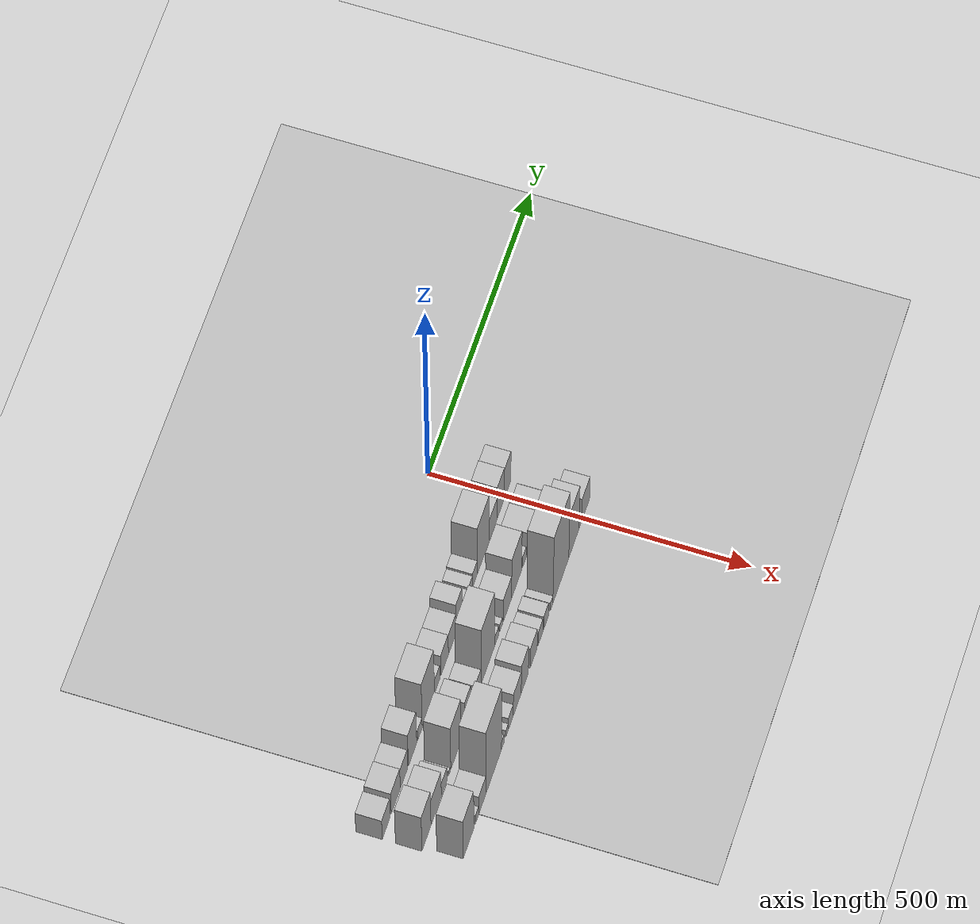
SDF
<sdf version="1.6">
 <world name="default">
  <include><name>ground_plane_1</name><uri>model://HANNAS_ground_plane</uri></include>
  <include>
   <name>ground_plane_2</name>
   <uri>model://HANNAS_ground_plane</uri>
   <pose>100 0 0  0 0 0</pose>
  </include>
  <model name="building_1">
   <static>1</static>
   <pose>100.0000 -561.8309 0 0.000000 0.000000 0.000000</pose>
   <link name="link">
    <pose>0 0 33.00 0 0 0</pose>
    <collision name="collision"><geometry><box><size>40.0000 36.3382 66.0000</size></box></geometry></collision>
    <visual name="visual">
     <cast_shadows>0</cast_shadows>
     <geometry><box><size>40.0000 36.3382 66.0000</size></box></geometry>
     <material>
      <script>
       <uri>model://HANNAS_wall/materials/scripts</uri>
       <uri>model://HANNAS_wall/materials/textures</uri>
       <name>vrc/HANNAS_wall</name>
      </script>
     </material>
    </visual>
   </link>
  </model>
  <model name="building_2">
   <static>1</static>
   <pose>100.0000 -517.9481 0 0.000000 0.000000 0.000000</pose>
   <link name="link">
    <pose>0 0 36.00 0 0 0</pose>
    <collision name="collision"><geometry><box><size>40.0000 41.4275 72.0000</size></box></geometry></collision>
    <visual name="visual">
     <cast_shadows>0</cast_shadows>
     <geometry><box><size>40.0000 41.4275 72.0000</size></box></geometry>
     <material>
      <script>
       <uri>model://HANNAS_wall/materials/scripts</uri>
       <uri>model://HANNAS_wall/materials/textures</uri>
       <name>vrc/HANNAS_wall</name>
      </script>
     </material>
    </visual>
   </link>
  </model>
  <model name="building_3">
   <static>1</static>
   <pose>100.0000 -480.1152 0 0.000000 0.000000 0.000000</pose>
   <link name="link">
    <pose>0 0 33.00 0 0 0</pose>
    <collision name="collision"><geometry><box><size>40.0000 34.2383 66.0000</size></box></geometry></collision>
    <visual name="visual">
     <cast_shadows>0</cast_shadows>
     <geometry><box><size>40.0000 34.2383 66.0000</size></box></geometry>
     <material>
      <script>
       <uri>model://HANNAS_wall/materials/scripts</uri>
       <uri>model://HANNAS_wall/materials/textures</uri>
       <name>vrc/HANNAS_wall</name>
      </script>
     </material>
    </visual>
   </link>
  </model>
  <model name="building_4">
   <static>1</static>
   <pose>100.0000 -440.6088 0 0.000000 0.000000 0.000000</pose>
   <link name="link">
    <pose>0 0 54.00 0 0 0</pose>
    <collision name="collision"><geometry><box><size>40.0000 38.7744 108.0000</size></box></geometry></collision>
    <visual name="visual">
     <cast_shadows>0</cast_shadows>
     <geometry><box><size>40.0000 38.7744 108.0000</size></box></geometry>
     <material>
      <script>
       <uri>model://HANNAS_wall/materials/scripts</uri>
       <uri>model://HANNAS_wall/materials/textures</uri>
       <name>vrc/HANNAS_wall</name>
      </script>
     </material>
    </visual>
   </link>
  </model>
  <model name="building_5">
   <static>1</static>
   <pose>100.0000 -406.5077 0 0.000000 0.000000 0.000000</pose>
   <link name="link">
    <pose>0 0 18.00 0 0 0</pose>
    <collision name="collision"><geometry><box><size>40.0000 21.4278 36.0000</size></box></geometry></collision>
    <visual name="visual">
     <cast_shadows>0</cast_shadows>
     <geometry><box><size>40.0000 21.4278 36.0000</size></box></geometry>
     <material>
      <script>
       <uri>model://HANNAS_wall/materials/scripts</uri>
       <uri>model://HANNAS_wall/materials/textures</uri>
       <name>vrc/HANNAS_wall</name>
      </script>
     </material>
    </visual>
   </link>
  </model>
  <model name="building_6">
   <static>1</static>
   <pose>100.0000 -367.1840 0 0.000000 0.000000 0.000000</pose>
   <link name="link">
    <pose>0 0 75.00 0 0 0</pose>
    <collision name="collision"><geometry><box><size>40.0000 57.2195 150.0000</size></box></geometry></collision>
    <visual name="visual">
     <cast_shadows>0</cast_shadows>
     <geometry><box><size>40.0000 57.2195 150.0000</size></box></geometry>
     <material>
      <script>
       <uri>model://HANNAS_wall/materials/scripts</uri>
       <uri>model://HANNAS_wall/materials/textures</uri>
       <name>vrc/HANNAS_wall</name>
      </script>
     </material>
    </visual>
   </link>
  </model>
  <model name="building_7">
   <static>1</static>
   <pose>100.0000 -325.8104 0 0.000000 0.000000 0.000000</pose>
   <link name="link">
    <pose>0 0 22.50 0 0 0</pose>
    <collision name="collision"><geometry><box><size>40.0000 25.5277 45.0000</size></box></geometry></collision>
    <visual name="visual">
     <cast_shadows>0</cast_shadows>
     <geometry><box><size>40.0000 25.5277 45.0000</size></box></geometry>
     <material>
      <script>
       <uri>model://HANNAS_wall/materials/scripts</uri>
       <uri>model://HANNAS_wall/materials/textures</uri>
       <name>vrc/HANNAS_wall</name>
      </script>
     </material>
    </visual>
   </link>
  </model>
  <model name="building_8">
   <static>1</static>
   <pose>100.0000 -291.0160 0 0.000000 0.000000 0.000000</pose>
   <link name="link">
    <pose>0 0 34.50 0 0 0</pose>
    <collision name="collision"><geometry><box><size>40.0000 36.0610 69.0000</size></box></geometry></collision>
    <visual name="visual">
     <cast_shadows>0</cast_shadows>
     <geometry><box><size>40.0000 36.0610 69.0000</size></box></geometry>
     <material>
      <script>
       <uri>model://HANNAS_wall/materials/scripts</uri>
       <uri>model://HANNAS_wall/materials/textures</uri>
       <name>vrc/HANNAS_wall</name>
      </script>
     </material>
    </visual>
   </link>
  </model>
  <model name="building_9">
   <static>1</static>
   <pose>100.0000 -254.7991 0 0.000000 0.000000 0.000000</pose>
   <link name="link">
    <pose>0 0 33.00 0 0 0</pose>
    <collision name="collision"><geometry><box><size>40.0000 36.3728 66.0000</size></box></geometry></collision>
    <visual name="visual">
     <cast_shadows>0</cast_shadows>
     <geometry><box><size>40.0000 36.3728 66.0000</size></box></geometry>
     <material>
      <script>
       <uri>model://HANNAS_wall/materials/scripts</uri>
       <uri>model://HANNAS_wall/materials/textures</uri>
       <name>vrc/HANNAS_wall</name>
      </script>
     </material>
    </visual>
   </link>
  </model>
  <model name="building_10">
   <static>1</static>
   <pose>100.0000 -222.1280 0 0.000000 0.000000 0.000000</pose>
   <link name="link">
    <pose>0 0 48.00 0 0 0</pose>
    <collision name="collision"><geometry><box><size>40.0000 28.9694 96.0000</size></box></geometry></collision>
    <visual name="visual">
     <cast_shadows>0</cast_shadows>
     <geometry><box><size>40.0000 28.9694 96.0000</size></box></geometry>
     <material>
      <script>
       <uri>model://HANNAS_wall/materials/scripts</uri>
       <uri>model://HANNAS_wall/materials/textures</uri>
       <name>vrc/HANNAS_wall</name>
      </script>
     </material>
    </visual>
   </link>
  </model>
  <model name="building_11">
   <static>1</static>
   <pose>100.0000 -188.0623 0 0.000000 0.000000 0.000000</pose>
   <link name="link">
    <pose>0 0 16.50 0 0 0</pose>
    <collision name="collision"><geometry><box><size>40.0000 19.1621 33.0000</size></box></geometry></collision>
    <visual name="visual">
     <cast_shadows>0</cast_shadows>
     <geometry><box><size>40.0000 19.1621 33.0000</size></box></geometry>
     <material>
      <script>
       <uri>model://HANNAS_wall/materials/scripts</uri>
       <uri>model://HANNAS_wall/materials/textures</uri>
       <name>vrc/HANNAS_wall</name>
      </script>
     </material>
    </visual>
   </link>
  </model>
  <model name="building_12">
   <static>1</static>
   <pose>100.0000 -168.3944 0 0.000000 0.000000 0.000000</pose>
   <link name="link">
    <pose>0 0 19.50 0 0 0</pose>
    <collision name="collision"><geometry><box><size>40.0000 20.1737 39.0000</size></box></geometry></collision>
    <visual name="visual">
     <cast_shadows>0</cast_shadows>
     <geometry><box><size>40.0000 20.1737 39.0000</size></box></geometry>
     <material>
      <script>
       <uri>model://HANNAS_wall/materials/scripts</uri>
       <uri>model://HANNAS_wall/materials/textures</uri>
       <name>vrc/HANNAS_wall</name>
      </script>
     </material>
    </visual>
   </link>
  </model>
  <model name="building_13">
   <static>1</static>
   <pose>100.0000 -146.7684 0 0.000000 0.000000 0.000000</pose>
   <link name="link">
    <pose>0 0 22.50 0 0 0</pose>
    <collision name="collision"><geometry><box><size>40.0000 23.0784 45.0000</size></box></geometry></collision>
    <visual name="visual">
     <cast_shadows>0</cast_shadows>
     <geometry><box><size>40.0000 23.0784 45.0000</size></box></geometry>
     <material>
      <script>
       <uri>model://HANNAS_wall/materials/scripts</uri>
       <uri>model://HANNAS_wall/materials/textures</uri>
       <name>vrc/HANNAS_wall</name>
      </script>
     </material>
    </visual>
   </link>
  </model>
  <model name="building_14">
   <static>1</static>
   <pose>100.0000 -107.0649 0 0.000000 0.000000 0.000000</pose>
   <link name="link">
    <pose>0 0 75.00 0 0 0</pose>
    <collision name="collision"><geometry><box><size>40.0000 56.3285 150.0000</size></box></geometry></collision>
    <visual name="visual">
     <cast_shadows>0</cast_shadows>
     <geometry><box><size>40.0000 56.3285 150.0000</size></box></geometry>
     <material>
      <script>
       <uri>model://HANNAS_wall/materials/scripts</uri>
       <uri>model://HANNAS_wall/materials/textures</uri>
       <name>vrc/HANNAS_wall</name>
      </script>
     </material>
    </visual>
   </link>
  </model>
  <model name="building_15">
   <static>1</static>
   <pose>100.0000 -59.4415 0 0.000000 0.000000 0.000000</pose>
   <link name="link">
    <pose>0 0 34.50 0 0 0</pose>
    <collision name="collision"><geometry><box><size>40.0000 38.9183 69.0000</size></box></geometry></collision>
    <visual name="visual">
     <cast_shadows>0</cast_shadows>
     <geometry><box><size>40.0000 38.9183 69.0000</size></box></geometry>
     <material>
      <script>
       <uri>model://HANNAS_wall/materials/scripts</uri>
       <uri>model://HANNAS_wall/materials/textures</uri>
       <name>vrc/HANNAS_wall</name>
      </script>
     </material>
    </visual>
   </link>
  </model>
  <model name="building_16">
   <static>1</static>
   <pose>100.0000 -22.7742 0 0.000000 0.000000 0.000000</pose>
   <link name="link">
    <pose>0 0 51.00 0 0 0</pose>
    <collision name="collision"><geometry><box><size>40.0000 34.4164 102.0000</size></box></geometry></collision>
    <visual name="visual">
     <cast_shadows>0</cast_shadows>
     <geometry><box><size>40.0000 34.4164 102.0000</size></box></geometry>
     <material>
      <script>
       <uri>model://HANNAS_wall/materials/scripts</uri>
       <uri>model://HANNAS_wall/materials/textures</uri>
       <name>vrc/HANNAS_wall</name>
      </script>
     </material>
    </visual>
   </link>
  </model>
  <model name="building_17">
   <static>1</static>
   <pose>100.0000 10.1270 0 0.000000 0.000000 0.000000</pose>
   <link name="link">
    <pose>0 0 48.00 0 0 0</pose>
    <collision name="collision"><geometry><box><size>40.0000 31.3859 96.0000</size></box></geometry></collision>
    <visual name="visual">
     <cast_shadows>0</cast_shadows>
     <geometry><box><size>40.0000 31.3859 96.0000</size></box></geometry>
     <material>
      <script>
       <uri>model://HANNAS_wall/materials/scripts</uri>
       <uri>model://HANNAS_wall/materials/textures</uri>
       <name>vrc/HANNAS_wall</name>
      </script>
     </material>
    </visual>
   </link>
  </model>
  <model name="building_38">
   <static>1</static>
   <pose>160.0000 -559.2099 0 0.000000 0.000000 0.000000</pose>
   <link name="link">
    <pose>0 0 60.00 0 0 0</pose>
    <collision name="collision"><geometry><box><size>40.0000 41.5803 120.0000</size></box></geometry></collision>
    <visual name="visual">
     <cast_shadows>0</cast_shadows>
     <geometry><box><size>40.0000 41.5803 120.0000</size></box></geometry>
     <material>
      <script>
       <uri>model://HANNAS_wall/materials/scripts</uri>
       <uri>model://HANNAS_wall/materials/textures</uri>
       <name>vrc/HANNAS_wall</name>
      </script>
     </material>
    </visual>
   </link>
  </model>
  <model name="building_39">
   <static>1</static>
   <pose>160.0000 -514.3681 0 0.000000 0.000000 0.000000</pose>
   <link name="link">
    <pose>0 0 43.50 0 0 0</pose>
    <collision name="collision"><geometry><box><size>40.0000 48.1032 87.0000</size></box></geometry></collision>
    <visual name="visual">
     <cast_shadows>0</cast_shadows>
     <geometry><box><size>40.0000 48.1032 87.0000</size></box></geometry>
     <material>
      <script>
       <uri>model://HANNAS_wall/materials/scripts</uri>
       <uri>model://HANNAS_wall/materials/textures</uri>
       <name>vrc/HANNAS_wall</name>
      </script>
     </material>
    </visual>
   </link>
  </model>
  <model name="building_40">
   <static>1</static>
   <pose>160.0000 -477.2326 0 0.000000 0.000000 0.000000</pose>
   <link name="link">
    <pose>0 0 22.50 0 0 0</pose>
    <collision name="collision"><geometry><box><size>40.0000 26.1678 45.0000</size></box></geometry></collision>
    <visual name="visual">
     <cast_shadows>0</cast_shadows>
     <geometry><box><size>40.0000 26.1678 45.0000</size></box></geometry>
     <material>
      <script>
       <uri>model://HANNAS_wall/materials/scripts</uri>
       <uri>model://HANNAS_wall/materials/textures</uri>
       <name>vrc/HANNAS_wall</name>
      </script>
     </material>
    </visual>
   </link>
  </model>
  <model name="building_41">
   <static>1</static>
   <pose>160.0000 -452.6797 0 0.000000 0.000000 0.000000</pose>
   <link name="link">
    <pose>0 0 7.50 0 0 0</pose>
    <collision name="collision"><geometry><box><size>40.0000 6.9381 15.0000</size></box></geometry></collision>
    <visual name="visual">
     <cast_shadows>0</cast_shadows>
     <geometry><box><size>40.0000 6.9381 15.0000</size></box></geometry>
     <material>
      <script>
       <uri>model://HANNAS_wall/materials/scripts</uri>
       <uri>model://HANNAS_wall/materials/textures</uri>
       <name>vrc/HANNAS_wall</name>
      </script>
     </material>
    </visual>
   </link>
  </model>
  <model name="building_42">
   <static>1</static>
   <pose>160.0000 -422.0795 0 0.000000 0.000000 0.000000</pose>
   <link name="link">
    <pose>0 0 72.00 0 0 0</pose>
    <collision name="collision"><geometry><box><size>40.0000 48.2623 144.0000</size></box></geometry></collision>
    <visual name="visual">
     <cast_shadows>0</cast_shadows>
     <geometry><box><size>40.0000 48.2623 144.0000</size></box></geometry>
     <material>
      <script>
       <uri>model://HANNAS_wall/materials/scripts</uri>
       <uri>model://HANNAS_wall/materials/textures</uri>
       <name>vrc/HANNAS_wall</name>
      </script>
     </material>
    </visual>
   </link>
  </model>
  <model name="building_43">
   <static>1</static>
   <pose>160.0000 -389.3384 0 0.000000 0.000000 0.000000</pose>
   <link name="link">
    <pose>0 0 16.50 0 0 0</pose>
    <collision name="collision"><geometry><box><size>40.0000 17.2200 33.0000</size></box></geometry></collision>
    <visual name="visual">
     <cast_shadows>0</cast_shadows>
     <geometry><box><size>40.0000 17.2200 33.0000</size></box></geometry>
     <material>
      <script>
       <uri>model://HANNAS_wall/materials/scripts</uri>
       <uri>model://HANNAS_wall/materials/textures</uri>
       <name>vrc/HANNAS_wall</name>
      </script>
     </material>
    </visual>
   </link>
  </model>
  <model name="building_44">
   <static>1</static>
   <pose>160.0000 -366.3206 0 0.000000 0.000000 0.000000</pose>
   <link name="link">
    <pose>0 0 48.00 0 0 0</pose>
    <collision name="collision"><geometry><box><size>40.0000 28.8156 96.0000</size></box></geometry></collision>
    <visual name="visual">
     <cast_shadows>0</cast_shadows>
     <geometry><box><size>40.0000 28.8156 96.0000</size></box></geometry>
     <material>
      <script>
       <uri>model://HANNAS_wall/materials/scripts</uri>
       <uri>model://HANNAS_wall/materials/textures</uri>
       <name>vrc/HANNAS_wall</name>
      </script>
     </material>
    </visual>
   </link>
  </model>
  <model name="building_45">
   <static>1</static>
   <pose>160.0000 -346.7898 0 0.000000 0.000000 0.000000</pose>
   <link name="link">
    <pose>0 0 12.00 0 0 0</pose>
    <collision name="collision"><geometry><box><size>40.0000 10.2461 24.0000</size></box></geometry></collision>
    <visual name="visual">
     <cast_shadows>0</cast_shadows>
     <geometry><box><size>40.0000 10.2461 24.0000</size></box></geometry>
     <material>
      <script>
       <uri>model://HANNAS_wall/materials/scripts</uri>
       <uri>model://HANNAS_wall/materials/textures</uri>
       <name>vrc/HANNAS_wall</name>
      </script>
     </material>
    </visual>
   </link>
  </model>
  <model name="building_46">
   <static>1</static>
   <pose>160.0000 -318.5452 0 0.000000 0.000000 0.000000</pose>
   <link name="link">
    <pose>0 0 27.00 0 0 0</pose>
    <collision name="collision"><geometry><box><size>40.0000 28.2431 54.0000</size></box></geometry></collision>
    <visual name="visual">
     <cast_shadows>0</cast_shadows>
     <geometry><box><size>40.0000 28.2431 54.0000</size></box></geometry>
     <material>
      <script>
       <uri>model://HANNAS_wall/materials/scripts</uri>
       <uri>model://HANNAS_wall/materials/textures</uri>
       <name>vrc/HANNAS_wall</name>
      </script>
     </material>
    </visual>
   </link>
  </model>
  <model name="building_47">
   <static>1</static>
   <pose>160.0000 -269.9182 0 0.000000 0.000000 0.000000</pose>
   <link name="link">
    <pose>0 0 90.00 0 0 0</pose>
    <collision name="collision"><geometry><box><size>40.0000 63.0109 180.0000</size></box></geometry></collision>
    <visual name="visual">
     <cast_shadows>0</cast_shadows>
     <geometry><box><size>40.0000 63.0109 180.0000</size></box></geometry>
     <material>
      <script>
       <uri>model://HANNAS_wall/materials/scripts</uri>
       <uri>model://HANNAS_wall/materials/textures</uri>
       <name>vrc/HANNAS_wall</name>
      </script>
     </material>
    </visual>
   </link>
  </model>
  <model name="building_48">
   <static>1</static>
   <pose>160.0000 -229.4392 0 0.000000 0.000000 0.000000</pose>
   <link name="link">
    <pose>0 0 15.00 0 0 0</pose>
    <collision name="collision"><geometry><box><size>40.0000 17.9471 30.0000</size></box></geometry></collision>
    <visual name="visual">
     <cast_shadows>0</cast_shadows>
     <geometry><box><size>40.0000 17.9471 30.0000</size></box></geometry>
     <material>
      <script>
       <uri>model://HANNAS_wall/materials/scripts</uri>
       <uri>model://HANNAS_wall/materials/textures</uri>
       <name>vrc/HANNAS_wall</name>
      </script>
     </material>
    </visual>
   </link>
  </model>
  <model name="building_49">
   <static>1</static>
   <pose>160.0000 -208.4997 0 0.000000 0.000000 0.000000</pose>
   <link name="link">
    <pose>0 0 12.00 0 0 0</pose>
    <collision name="collision"><geometry><box><size>40.0000 11.9319 24.0000</size></box></geometry></collision>
    <visual name="visual">
     <cast_shadows>0</cast_shadows>
     <geometry><box><size>40.0000 11.9319 24.0000</size></box></geometry>
     <material>
      <script>
       <uri>model://HANNAS_wall/materials/scripts</uri>
       <uri>model://HANNAS_wall/materials/textures</uri>
       <name>vrc/HANNAS_wall</name>
      </script>
     </material>
    </visual>
   </link>
  </model>
  <model name="building_50">
   <static>1</static>
   <pose>160.0000 -178.2125 0 0.000000 0.000000 0.000000</pose>
   <link name="link">
    <pose>0 0 37.50 0 0 0</pose>
    <collision name="collision"><geometry><box><size>40.0000 40.6425 75.0000</size></box></geometry></collision>
    <visual name="visual">
     <cast_shadows>0</cast_shadows>
     <geometry><box><size>40.0000 40.6425 75.0000</size></box></geometry>
     <material>
      <script>
       <uri>model://HANNAS_wall/materials/scripts</uri>
       <uri>model://HANNAS_wall/materials/textures</uri>
       <name>vrc/HANNAS_wall</name>
      </script>
     </material>
    </visual>
   </link>
  </model>
  <model name="building_51">
   <static>1</static>
   <pose>160.0000 -133.4614 0 0.000000 0.000000 0.000000</pose>
   <link name="link">
    <pose>0 0 64.50 0 0 0</pose>
    <collision name="collision"><geometry><box><size>40.0000 48.8598 129.0000</size></box></geometry></collision>
    <visual name="visual">
     <cast_shadows>0</cast_shadows>
     <geometry><box><size>40.0000 48.8598 129.0000</size></box></geometry>
     <material>
      <script>
       <uri>model://HANNAS_wall/materials/scripts</uri>
       <uri>model://HANNAS_wall/materials/textures</uri>
       <name>vrc/HANNAS_wall</name>
      </script>
     </material>
    </visual>
   </link>
  </model>
  <model name="building_52">
   <static>1</static>
   <pose>160.0000 -96.6201 0 0.000000 0.000000 0.000000</pose>
   <link name="link">
    <pose>0 0 18.00 0 0 0</pose>
    <collision name="collision"><geometry><box><size>40.0000 18.8228 36.0000</size></box></geometry></collision>
    <visual name="visual">
     <cast_shadows>0</cast_shadows>
     <geometry><box><size>40.0000 18.8228 36.0000</size></box></geometry>
     <material>
      <script>
       <uri>model://HANNAS_wall/materials/scripts</uri>
       <uri>model://HANNAS_wall/materials/textures</uri>
       <name>vrc/HANNAS_wall</name>
      </script>
     </material>
    </visual>
   </link>
  </model>
  <model name="building_53">
   <static>1</static>
   <pose>160.0000 -64.4087 0 0.000000 0.000000 0.000000</pose>
   <link name="link">
    <pose>0 0 37.50 0 0 0</pose>
    <collision name="collision"><geometry><box><size>40.0000 39.6000 75.0000</size></box></geometry></collision>
    <visual name="visual">
     <cast_shadows>0</cast_shadows>
     <geometry><box><size>40.0000 39.6000 75.0000</size></box></geometry>
     <material>
      <script>
       <uri>model://HANNAS_wall/materials/scripts</uri>
       <uri>model://HANNAS_wall/materials/textures</uri>
       <name>vrc/HANNAS_wall</name>
      </script>
     </material>
    </visual>
   </link>
  </model>
  <model name="building_54">
   <static>1</static>
   <pose>160.0000 -25.6435 0 0.000000 0.000000 0.000000</pose>
   <link name="link">
    <pose>0 0 33.00 0 0 0</pose>
    <collision name="collision"><geometry><box><size>40.0000 37.9305 66.0000</size></box></geometry></collision>
    <visual name="visual">
     <cast_shadows>0</cast_shadows>
     <geometry><box><size>40.0000 37.9305 66.0000</size></box></geometry>
     <material>
      <script>
       <uri>model://HANNAS_wall/materials/scripts</uri>
       <uri>model://HANNAS_wall/materials/textures</uri>
       <name>vrc/HANNAS_wall</name>
      </script>
     </material>
    </visual>
   </link>
  </model>
  <model name="building_55">
   <static>1</static>
   <pose>160.0000 2.1605 0 0.000000 0.000000 0.000000</pose>
   <link name="link">
    <pose>0 0 15.00 0 0 0</pose>
    <collision name="collision"><geometry><box><size>40.0000 17.6775 30.0000</size></box></geometry></collision>
    <visual name="visual">
     <cast_shadows>0</cast_shadows>
     <geometry><box><size>40.0000 17.6775 30.0000</size></box></geometry>
     <material>
      <script>
       <uri>model://HANNAS_wall/materials/scripts</uri>
       <uri>model://HANNAS_wall/materials/textures</uri>
       <name>vrc/HANNAS_wall</name>
      </script>
     </material>
    </visual>
   </link>
  </model>
  <model name="building_73">
   <static>1</static>
   <pose>220.0000 -548.1871 0 0.000000 0.000000 0.000000</pose>
   <link name="link">
    <pose>0 0 66.00 0 0 0</pose>
    <collision name="collision"><geometry><box><size>40.0000 49.6259 132.0000</size></box></geometry></collision>
    <visual name="visual">
     <cast_shadows>0</cast_shadows>
     <geometry><box><size>40.0000 49.6259 132.0000</size></box></geometry>
     <material>
      <script>
       <uri>model://HANNAS_wall/materials/scripts</uri>
       <uri>model://HANNAS_wall/materials/textures</uri>
       <name>vrc/HANNAS_wall</name>
      </script>
     </material>
    </visual>
   </link>
  </model>
  <model name="building_74">
   <static>1</static>
   <pose>220.0000 -508.6748 0 0.000000 0.000000 0.000000</pose>
   <link name="link">
    <pose>0 0 15.00 0 0 0</pose>
    <collision name="collision"><geometry><box><size>40.0000 15.3985 30.0000</size></box></geometry></collision>
    <visual name="visual">
     <cast_shadows>0</cast_shadows>
     <geometry><box><size>40.0000 15.3985 30.0000</size></box></geometry>
     <material>
      <script>
       <uri>model://HANNAS_wall/materials/scripts</uri>
       <uri>model://HANNAS_wall/materials/textures</uri>
       <name>vrc/HANNAS_wall</name>
      </script>
     </material>
    </visual>
   </link>
  </model>
  <model name="building_75">
   <static>1</static>
   <pose>220.0000 -483.9895 0 0.000000 0.000000 0.000000</pose>
   <link name="link">
    <pose>0 0 31.50 0 0 0</pose>
    <collision name="collision"><geometry><box><size>40.0000 33.9722 63.0000</size></box></geometry></collision>
    <visual name="visual">
     <cast_shadows>0</cast_shadows>
     <geometry><box><size>40.0000 33.9722 63.0000</size></box></geometry>
     <material>
      <script>
       <uri>model://HANNAS_wall/materials/scripts</uri>
       <uri>model://HANNAS_wall/materials/textures</uri>
       <name>vrc/HANNAS_wall</name>
      </script>
     </material>
    </visual>
   </link>
  </model>
  <model name="building_76">
   <static>1</static>
   <pose>220.0000 -430.3604 0 0.000000 0.000000 0.000000</pose>
   <link name="link">
    <pose>0 0 106.50 0 0 0</pose>
    <collision name="collision"><geometry><box><size>40.0000 73.2858 213.0000</size></box></geometry></collision>
    <visual name="visual">
     <cast_shadows>0</cast_shadows>
     <geometry><box><size>40.0000 73.2858 213.0000</size></box></geometry>
     <material>
      <script>
       <uri>model://HANNAS_wall/materials/scripts</uri>
       <uri>model://HANNAS_wall/materials/textures</uri>
       <name>vrc/HANNAS_wall</name>
      </script>
     </material>
    </visual>
   </link>
  </model>
  <model name="building_77">
   <static>1</static>
   <pose>220.0000 -387.3853 0 0.000000 0.000000 0.000000</pose>
   <link name="link">
    <pose>0 0 13.50 0 0 0</pose>
    <collision name="collision"><geometry><box><size>40.0000 12.6644 27.0000</size></box></geometry></collision>
    <visual name="visual">
     <cast_shadows>0</cast_shadows>
     <geometry><box><size>40.0000 12.6644 27.0000</size></box></geometry>
     <material>
      <script>
       <uri>model://HANNAS_wall/materials/scripts</uri>
       <uri>model://HANNAS_wall/materials/textures</uri>
       <name>vrc/HANNAS_wall</name>
      </script>
     </material>
    </visual>
   </link>
  </model>
  <model name="building_78">
   <static>1</static>
   <pose>220.0000 -367.1645 0 0.000000 0.000000 0.000000</pose>
   <link name="link">
    <pose>0 0 12.00 0 0 0</pose>
    <collision name="collision"><geometry><box><size>40.0000 11.7772 24.0000</size></box></geometry></collision>
    <visual name="visual">
     <cast_shadows>0</cast_shadows>
     <geometry><box><size>40.0000 11.7772 24.0000</size></box></geometry>
     <material>
      <script>
       <uri>model://HANNAS_wall/materials/scripts</uri>
       <uri>model://HANNAS_wall/materials/textures</uri>
       <name>vrc/HANNAS_wall</name>
      </script>
     </material>
    </visual>
   </link>
  </model>
  <model name="building_79">
   <static>1</static>
   <pose>220.0000 -349.4355 0 0.000000 0.000000 0.000000</pose>
   <link name="link">
    <pose>0 0 21.00 0 0 0</pose>
    <collision name="collision"><geometry><box><size>40.0000 23.6808 42.0000</size></box></geometry></collision>
    <visual name="visual">
     <cast_shadows>0</cast_shadows>
     <geometry><box><size>40.0000 23.6808 42.0000</size></box></geometry>
     <material>
      <script>
       <uri>model://HANNAS_wall/materials/scripts</uri>
       <uri>model://HANNAS_wall/materials/textures</uri>
       <name>vrc/HANNAS_wall</name>
      </script>
     </material>
    </visual>
   </link>
  </model>
  <model name="building_80">
   <static>1</static>
   <pose>220.0000 -318.6279 0 0.000000 0.000000 0.000000</pose>
   <link name="link">
    <pose>0 0 37.50 0 0 0</pose>
    <collision name="collision"><geometry><box><size>40.0000 37.9344 75.0000</size></box></geometry></collision>
    <visual name="visual">
     <cast_shadows>0</cast_shadows>
     <geometry><box><size>40.0000 37.9344 75.0000</size></box></geometry>
     <material>
      <script>
       <uri>model://HANNAS_wall/materials/scripts</uri>
       <uri>model://HANNAS_wall/materials/textures</uri>
       <name>vrc/HANNAS_wall</name>
      </script>
     </material>
    </visual>
   </link>
  </model>
  <model name="building_81">
   <static>1</static>
   <pose>220.0000 -282.5790 0 0.000000 0.000000 0.000000</pose>
   <link name="link">
    <pose>0 0 46.50 0 0 0</pose>
    <collision name="collision"><geometry><box><size>40.0000 34.1635 93.0000</size></box></geometry></collision>
    <visual name="visual">
     <cast_shadows>0</cast_shadows>
     <geometry><box><size>40.0000 34.1635 93.0000</size></box></geometry>
     <material>
      <script>
       <uri>model://HANNAS_wall/materials/scripts</uri>
       <uri>model://HANNAS_wall/materials/textures</uri>
       <name>vrc/HANNAS_wall</name>
      </script>
     </material>
    </visual>
   </link>
  </model>
  <model name="building_82">
   <static>1</static>
   <pose>220.0000 -239.9013 0 0.000000 0.000000 0.000000</pose>
   <link name="link">
    <pose>0 0 33.00 0 0 0</pose>
    <collision name="collision"><geometry><box><size>40.0000 33.1918 66.0000</size></box></geometry></collision>
    <visual name="visual">
     <cast_shadows>0</cast_shadows>
     <geometry><box><size>40.0000 33.1918 66.0000</size></box></geometry>
     <material>
      <script>
       <uri>model://HANNAS_wall/materials/scripts</uri>
       <uri>model://HANNAS_wall/materials/textures</uri>
       <name>vrc/HANNAS_wall</name>
      </script>
     </material>
    </visual>
   </link>
  </model>
  <model name="building_83">
   <static>1</static>
   <pose>220.0000 -207.3462 0 0.000000 0.000000 0.000000</pose>
   <link name="link">
    <pose>0 0 22.50 0 0 0</pose>
    <collision name="collision"><geometry><box><size>40.0000 23.9185 45.0000</size></box></geometry></collision>
    <visual name="visual">
     <cast_shadows>0</cast_shadows>
     <geometry><box><size>40.0000 23.9185 45.0000</size></box></geometry>
     <material>
      <script>
       <uri>model://HANNAS_wall/materials/scripts</uri>
       <uri>model://HANNAS_wall/materials/textures</uri>
       <name>vrc/HANNAS_wall</name>
      </script>
     </material>
    </visual>
   </link>
  </model>
  <model name="building_84">
   <static>1</static>
   <pose>220.0000 -180.6785 0 0.000000 0.000000 0.000000</pose>
   <link name="link">
    <pose>0 0 22.50 0 0 0</pose>
    <collision name="collision"><geometry><box><size>40.0000 23.4168 45.0000</size></box></geometry></collision>
    <visual name="visual">
     <cast_shadows>0</cast_shadows>
     <geometry><box><size>40.0000 23.4168 45.0000</size></box></geometry>
     <material>
      <script>
       <uri>model://HANNAS_wall/materials/scripts</uri>
       <uri>model://HANNAS_wall/materials/textures</uri>
       <name>vrc/HANNAS_wall</name>
      </script>
     </material>
    </visual>
   </link>
  </model>
  <model name="building_85">
   <static>1</static>
   <pose>220.0000 -153.6174 0 0.000000 0.000000 0.000000</pose>
   <link name="link">
    <pose>0 0 13.50 0 0 0</pose>
    <collision name="collision"><geometry><box><size>40.0000 12.7053 27.0000</size></box></geometry></collision>
    <visual name="visual">
     <cast_shadows>0</cast_shadows>
     <geometry><box><size>40.0000 12.7053 27.0000</size></box></geometry>
     <material>
      <script>
       <uri>model://HANNAS_wall/materials/scripts</uri>
       <uri>model://HANNAS_wall/materials/textures</uri>
       <name>vrc/HANNAS_wall</name>
      </script>
     </material>
    </visual>
   </link>
  </model>
  <model name="building_86">
   <static>1</static>
   <pose>220.0000 -108.6834 0 0.000000 0.000000 0.000000</pose>
   <link name="link">
    <pose>0 0 109.50 0 0 0</pose>
    <collision name="collision"><geometry><box><size>40.0000 77.1627 219.0000</size></box></geometry></collision>
    <visual name="visual">
     <cast_shadows>0</cast_shadows>
     <geometry><box><size>40.0000 77.1627 219.0000</size></box></geometry>
     <material>
      <script>
       <uri>model://HANNAS_wall/materials/scripts</uri>
       <uri>model://HANNAS_wall/materials/textures</uri>
       <name>vrc/HANNAS_wall</name>
      </script>
     </material>
    </visual>
   </link>
  </model>
  <model name="building_87">
   <static>1</static>
   <pose>220.0000 -45.2883 0 0.000000 0.000000 0.000000</pose>
   <link name="link">
    <pose>0 0 72.00 0 0 0</pose>
    <collision name="collision"><geometry><box><size>40.0000 49.6276 144.0000</size></box></geometry></collision>
    <visual name="visual">
     <cast_shadows>0</cast_shadows>
     <geometry><box><size>40.0000 49.6276 144.0000</size></box></geometry>
     <material>
      <script>
       <uri>model://HANNAS_wall/materials/scripts</uri>
       <uri>model://HANNAS_wall/materials/textures</uri>
       <name>vrc/HANNAS_wall</name>
      </script>
     </material>
    </visual>
   </link>
  </model>
  <model name="building_88">
   <static>1</static>
   <pose>220.0000 -15.0514 0 0.000000 0.000000 0.000000</pose>
   <link name="link">
    <pose>0 0 13.50 0 0 0</pose>
    <collision name="collision"><geometry><box><size>40.0000 10.8462 27.0000</size></box></geometry></collision>
    <visual name="visual">
     <cast_shadows>0</cast_shadows>
     <geometry><box><size>40.0000 10.8462 27.0000</size></box></geometry>
     <material>
      <script>
       <uri>model://HANNAS_wall/materials/scripts</uri>
       <uri>model://HANNAS_wall/materials/textures</uri>
       <name>vrc/HANNAS_wall</name>
      </script>
     </material>
    </visual>
   </link>
  </model>
  <model name="building_89">
   <static>1</static>
   <pose>220.0000 12.8603 0 0.000000 0.000000 0.000000</pose>
   <link name="link">
    <pose>0 0 37.50 0 0 0</pose>
    <collision name="collision"><geometry><box><size>40.0000 38.9772 75.0000</size></box></geometry></collision>
    <visual name="visual">
     <cast_shadows>0</cast_shadows>
     <geometry><box><size>40.0000 38.9772 75.0000</size></box></geometry>
     <material>
      <script>
       <uri>model://HANNAS_wall/materials/scripts</uri>
       <uri>model://HANNAS_wall/materials/textures</uri>
       <name>vrc/HANNAS_wall</name>
      </script>
     </material>
    </visual>
   </link>
  </model>
 </world>
</sdf>
